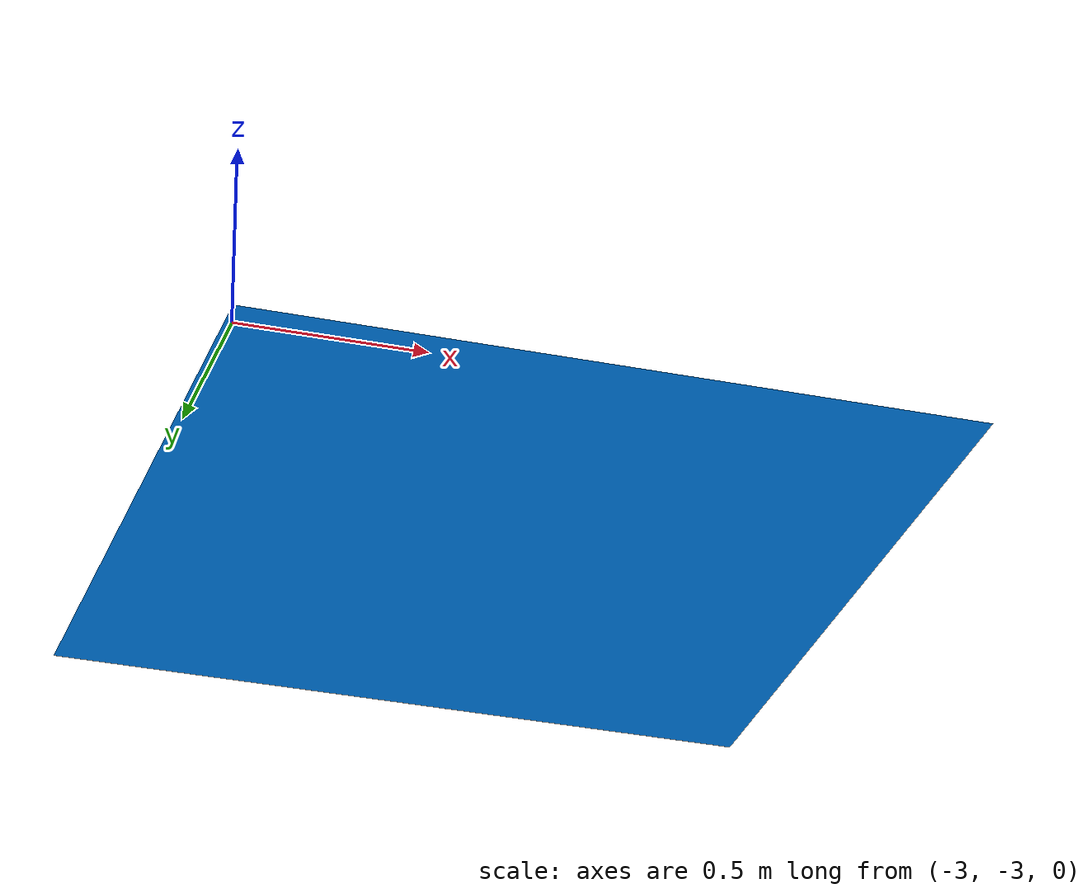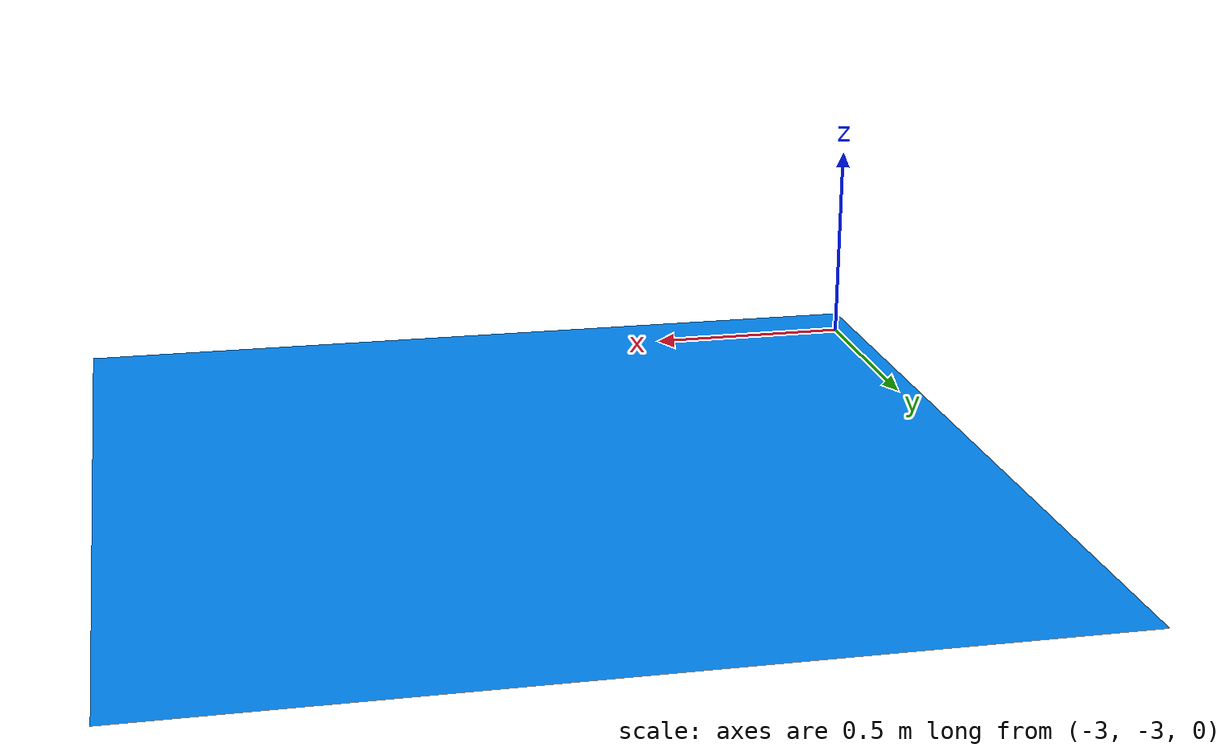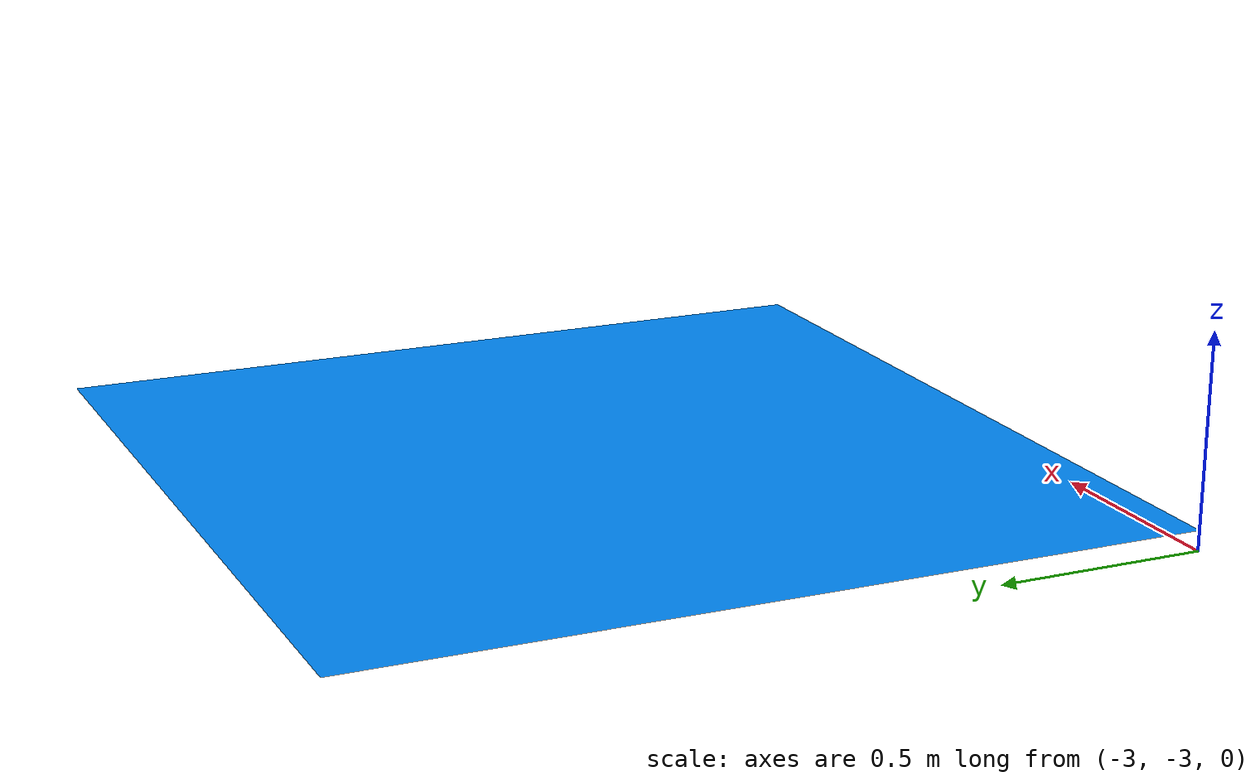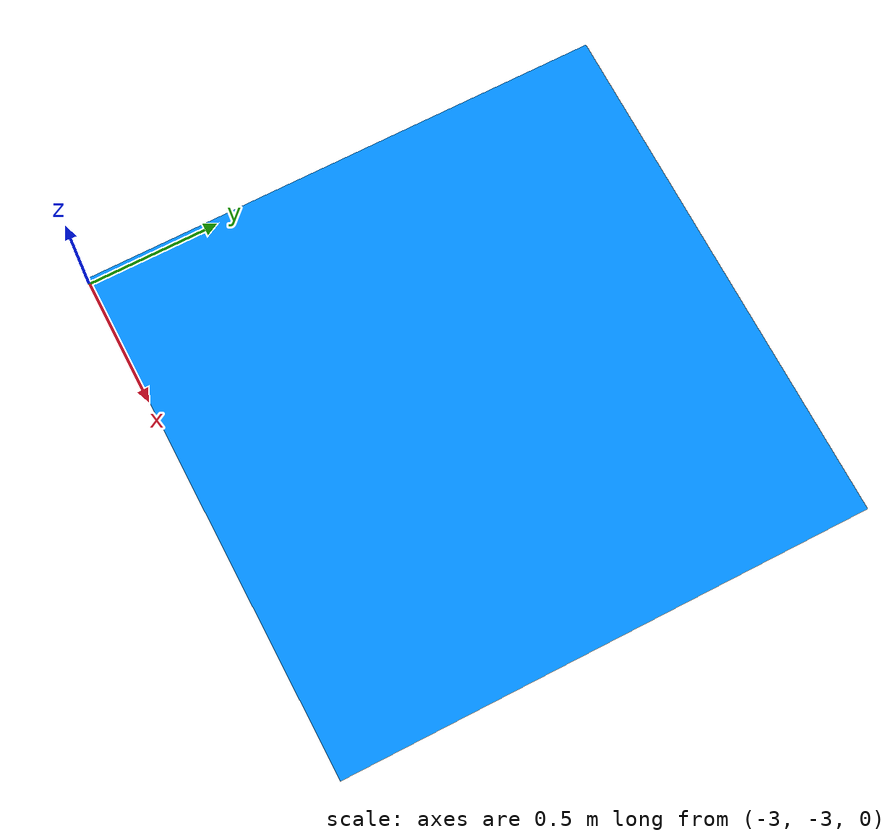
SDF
<?xml version="1.0" ?>
<sdf version="1.9">
  <model name="blue_square">
    <static>true</static>
    <pose>-2 -2 0.05 0 0 0</pose>
    <link name="link">
      <visual name="visual">
        <geometry>
          <mesh>
            <uri>../../materials/meshes/square_blue_1m_2cm.stl</uri>
            <scale>2 2 1</scale>
          </mesh>
        </geometry>
        <material>
          <ambient>0.04 0.10 0.28 1</ambient>
          <diffuse>0.00 0.55 1.00 1</diffuse>
          <specular>0.90 0.90 0.90 1</specular>
          <emissive>0.000 0.004 0.541 1</emissive>
          <double_sided>true</double_sided>
        </material>
      </visual>

      <collision name="collision">
        <pose>0 0 -0.047 0 0 0</pose>
        <geometry>
          <box><size>2 2 0.1</size></box>
        </geometry>
      </collision>
    </link>
  </model>
</sdf>
